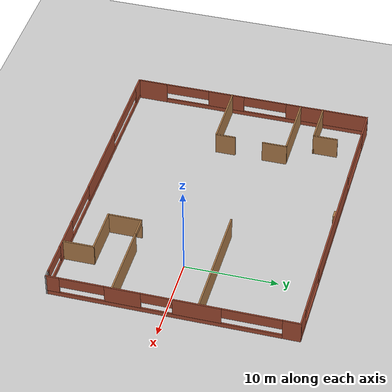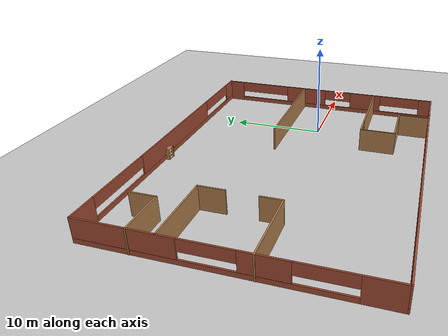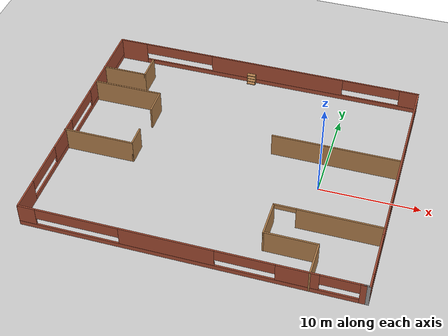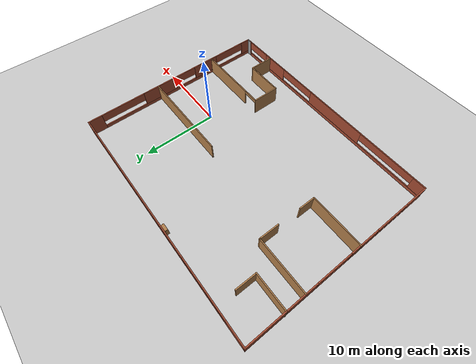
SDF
<sdf version="1.6">
 <world name="default">
  <model name="ground_plane">
   <static>1</static>
   <link name="link">
    <collision name="collision">
     <geometry><plane><normal>0 0 1</normal><size>100 100</size></plane></geometry>
     <surface><friction><ode><mu>100</mu><mu2>50</mu2></ode></friction></surface>
    </collision>
    <visual name="visual">
     <cast_shadows>0</cast_shadows>
     <geometry><plane><normal>0 0 1</normal><size>100 100</size></plane></geometry>
     <material>
      <script><uri>file://media/materials/scripts/gazebo.material</uri><name>Gazebo/Grey</name></script>
     </material>
    </visual>
   </link>
  </model>
  <model name="Building_1">
   <pose>-9.21158 0.7817 0 0 -0 0</pose>
   <link name="Wall_125">
    <pose>0.059584 13.1786 0 0 -0 0</pose>
    <visual name="Wall_125_Visual_0">
     <pose>-15.0244 0 1.25 0 -0 0</pose>
     <geometry><box><size>2.9511 0.15 2.5</size></box></geometry>
     <material>
      <script><uri>file://media/materials/scripts/gazebo.material</uri><name>Gazebo/Bricks</name></script>
      <ambient>1 1 1 1</ambient>
     </material>
     <meta><layer>0</layer></meta>
    </visual>
    <collision name="Wall_125_Collision_0">
     <geometry><box><size>2.9511 0.15 2.5</size></box></geometry>
     <pose>-15.0244 0 1.25 0 -0 0</pose>
    </collision>
    <visual name="Wall_125_Visual_1">
     <pose>1.47555 0 0.25 0 -0 0</pose>
     <geometry><box><size>30.0489 0.15 0.5</size></box></geometry>
     <material>
      <script><uri>file://media/materials/scripts/gazebo.material</uri><name>Gazebo/Bricks</name></script>
      <ambient>1 1 1 1</ambient>
     </material>
     <meta><layer>0</layer></meta>
    </visual>
    <collision name="Wall_125_Collision_1">
     <geometry><box><size>30.0489 0.15 0.5</size></box></geometry>
     <pose>1.47555 0 0.25 0 -0 0</pose>
    </collision>
    <visual name="Wall_125_Visual_2">
     <pose>1.21611 0 1.5 0 -0 0</pose>
     <geometry><box><size>14.4547 0.15 2</size></box></geometry>
     <material>
      <script><uri>file://media/materials/scripts/gazebo.material</uri><name>Gazebo/Bricks</name></script>
      <ambient>1 1 1 1</ambient>
     </material>
     <meta><layer>0</layer></meta>
    </visual>
    <collision name="Wall_125_Collision_2">
     <geometry><box><size>14.4547 0.15 2</size></box></geometry>
     <pose>1.21611 0 1.5 0 -0 0</pose>
    </collision>
    <visual name="Wall_125_Visual_3">
     <pose>15.494 0 1.5 0 -0 0</pose>
     <geometry><box><size>2.0121 0.15 2</size></box></geometry>
     <material>
      <script><uri>file://media/materials/scripts/gazebo.material</uri><name>Gazebo/Bricks</name></script>
      <ambient>1 1 1 1</ambient>
     </material>
     <meta><layer>0</layer></meta>
    </visual>
    <collision name="Wall_125_Collision_3">
     <geometry><box><size>2.0121 0.15 2</size></box></geometry>
     <pose>15.494 0 1.5 0 -0 0</pose>
    </collision>
    <visual name="Wall_125_Visual_4">
     <pose>-9.78007 0 1.9 0 -0 0</pose>
     <geometry><box><size>7.53766 0.15 1.2</size></box></geometry>
     <material>
      <script><uri>file://media/materials/scripts/gazebo.material</uri><name>Gazebo/Bricks</name></script>
      <ambient>1 1 1 1</ambient>
     </material>
     <meta><layer>0</layer></meta>
    </visual>
    <collision name="Wall_125_Collision_4">
     <geometry><box><size>7.53766 0.15 1.2</size></box></geometry>
     <pose>-9.78007 0 1.9 0 -0 0</pose>
    </collision>
    <visual name="Wall_125_Visual_5">
     <pose>11.4657 0 1.9 0 -0 0</pose>
     <geometry><box><size>6.04445 0.15 1.2</size></box></geometry>
     <material>
      <script><uri>file://media/materials/scripts/gazebo.material</uri><name>Gazebo/Bricks</name></script>
      <ambient>1 1 1 1</ambient>
     </material>
     <meta><layer>0</layer></meta>
    </visual>
    <collision name="Wall_125_Collision_5">
     <geometry><box><size>6.04445 0.15 1.2</size></box></geometry>
     <pose>11.4657 0 1.9 0 -0 0</pose>
    </collision>
   </link>
   <link name="Wall_127">
    <pose>-0.149643 -13.1714 0 0 -0 3.14159</pose>
    <visual name="Wall_127_Visual_0">
     <pose>-16.0964 0 1.25 0 -0 0</pose>
     <geometry><box><size>0.557218 0.15 2.5</size></box></geometry>
     <material>
      <script><uri>file://media/materials/scripts/gazebo.material</uri><name>Gazebo/Bricks</name></script>
      <ambient>1 1 1 1</ambient>
     </material>
     <meta><layer>0</layer></meta>
    </visual>
    <collision name="Wall_127_Collision_0">
     <geometry><box><size>0.557218 0.15 2.5</size></box></geometry>
     <pose>-16.0964 0 1.25 0 -0 0</pose>
    </collision>
    <visual name="Wall_127_Visual_1">
     <pose>0.278609 0 0.25 0 -0 0</pose>
     <geometry><box><size>32.1928 0.15 0.5</size></box></geometry>
     <material>
      <script><uri>file://media/materials/scripts/gazebo.material</uri><name>Gazebo/Bricks</name></script>
      <ambient>1 1 1 1</ambient>
     </material>
     <meta><layer>0</layer></meta>
    </visual>
    <collision name="Wall_127_Collision_1">
     <geometry><box><size>32.1928 0.15 0.5</size></box></geometry>
     <pose>0.278609 0 0.25 0 -0 0</pose>
    </collision>
    <visual name="Wall_127_Visual_2">
     <pose>-10.2298 0 1.5 0 -0 0</pose>
     <geometry><box><size>3.96485 0.15 2</size></box></geometry>
     <material>
      <script><uri>file://media/materials/scripts/gazebo.material</uri><name>Gazebo/Bricks</name></script>
      <ambient>1 1 1 1</ambient>
     </material>
     <meta><layer>0</layer></meta>
    </visual>
    <collision name="Wall_127_Collision_2">
     <geometry><box><size>3.96485 0.15 2</size></box></geometry>
     <pose>-10.2298 0 1.5 0 -0 0</pose>
    </collision>
    <visual name="Wall_127_Visual_3">
     <pose>1.8819 0 1.5 0 -0 0</pose>
     <geometry><box><size>9.09431 0.15 2</size></box></geometry>
     <material>
      <script><uri>file://media/materials/scripts/gazebo.material</uri><name>Gazebo/Bricks</name></script>
      <ambient>1 1 1 1</ambient>
     </material>
     <meta><layer>0</layer></meta>
    </visual>
    <collision name="Wall_127_Collision_3">
     <geometry><box><size>9.09431 0.15 2</size></box></geometry>
     <pose>1.8819 0 1.5 0 -0 0</pose>
    </collision>
    <visual name="Wall_127_Visual_4">
     <pose>15.4915 0 1.5 0 -0 0</pose>
     <geometry><box><size>1.76697 0.15 2</size></box></geometry>
     <material>
      <script><uri>file://media/materials/scripts/gazebo.material</uri><name>Gazebo/Bricks</name></script>
      <ambient>1 1 1 1</ambient>
     </material>
     <meta><layer>0</layer></meta>
    </visual>
    <collision name="Wall_127_Collision_4">
     <geometry><box><size>1.76697 0.15 2</size></box></geometry>
     <pose>15.4915 0 1.5 0 -0 0</pose>
    </collision>
    <visual name="Wall_127_Visual_5">
     <pose>-14.015 0 1.9 0 -0 0</pose>
     <geometry><box><size>3.6056 0.15 1.2</size></box></geometry>
     <material>
      <script><uri>file://media/materials/scripts/gazebo.material</uri><name>Gazebo/Bricks</name></script>
      <ambient>1 1 1 1</ambient>
     </material>
     <meta><layer>0</layer></meta>
    </visual>
    <collision name="Wall_127_Collision_5">
     <geometry><box><size>3.6056 0.15 1.2</size></box></geometry>
     <pose>-14.015 0 1.9 0 -0 0</pose>
    </collision>
    <visual name="Wall_127_Visual_6">
     <pose>-5.45629 0 1.9 0 -0 0</pose>
     <geometry><box><size>5.58208 0.15 1.2</size></box></geometry>
     <material>
      <script><uri>file://media/materials/scripts/gazebo.material</uri><name>Gazebo/Bricks</name></script>
      <ambient>1 1 1 1</ambient>
     </material>
     <meta><layer>0</layer></meta>
    </visual>
    <collision name="Wall_127_Collision_6">
     <geometry><box><size>5.58208 0.15 1.2</size></box></geometry>
     <pose>-5.45629 0 1.9 0 -0 0</pose>
    </collision>
    <visual name="Wall_127_Visual_7">
     <pose>10.5185 0 1.9 0 -0 0</pose>
     <geometry><box><size>8.17896 0.15 1.2</size></box></geometry>
     <material>
      <script><uri>file://media/materials/scripts/gazebo.material</uri><name>Gazebo/Bricks</name></script>
      <ambient>1 1 1 1</ambient>
     </material>
     <meta><layer>0</layer></meta>
    </visual>
    <collision name="Wall_127_Collision_7">
     <geometry><box><size>8.17896 0.15 1.2</size></box></geometry>
     <pose>10.5185 0 1.9 0 -0 0</pose>
    </collision>
   </link>
   <link name="Wall_128">
    <pose>-16.4496 0.003634 0 0 -0 1.5708</pose>
    <visual name="Wall_128_Visual_0">
     <pose>-11.5795 0 1.25 0 -0 0</pose>
     <geometry><box><size>3.34094 0.15 2.5</size></box></geometry>
     <material>
      <script><uri>file://media/materials/scripts/gazebo.material</uri><name>Gazebo/Bricks</name></script>
      <ambient>1 1 1 1</ambient>
     </material>
     <meta><layer>0</layer></meta>
    </visual>
    <collision name="Wall_128_Collision_0">
     <geometry><box><size>3.34094 0.15 2.5</size></box></geometry>
     <pose>-11.5795 0 1.25 0 -0 0</pose>
    </collision>
    <visual name="Wall_128_Visual_1">
     <pose>1.67047 0 0.25 0 -0 0</pose>
     <geometry><box><size>23.1591 0.15 0.5</size></box></geometry>
     <material>
      <script><uri>file://media/materials/scripts/gazebo.material</uri><name>Gazebo/Bricks</name></script>
      <ambient>1 1 1 1</ambient>
     </material>
     <meta><layer>0</layer></meta>
    </visual>
    <collision name="Wall_128_Collision_1">
     <geometry><box><size>23.1591 0.15 0.5</size></box></geometry>
     <pose>1.67047 0 0.25 0 -0 0</pose>
    </collision>
    <visual name="Wall_128_Visual_2">
     <pose>-2.96531 0 1.5 0 -0 0</pose>
     <geometry><box><size>4.12946 0.15 2</size></box></geometry>
     <material>
      <script><uri>file://media/materials/scripts/gazebo.material</uri><name>Gazebo/Bricks</name></script>
      <ambient>1 1 1 1</ambient>
     </material>
     <meta><layer>0</layer></meta>
    </visual>
    <collision name="Wall_128_Collision_2">
     <geometry><box><size>4.12946 0.15 2</size></box></geometry>
     <pose>-2.96531 0 1.5 0 -0 0</pose>
    </collision>
    <visual name="Wall_128_Visual_3">
     <pose>8.60155 0 1.5 0 -0 0</pose>
     <geometry><box><size>9.2969 0.15 2</size></box></geometry>
     <material>
      <script><uri>file://media/materials/scripts/gazebo.material</uri><name>Gazebo/Bricks</name></script>
      <ambient>1 1 1 1</ambient>
     </material>
     <meta><layer>0</layer></meta>
    </visual>
    <collision name="Wall_128_Collision_3">
     <geometry><box><size>9.2969 0.15 2</size></box></geometry>
     <pose>8.60155 0 1.5 0 -0 0</pose>
    </collision>
    <visual name="Wall_128_Visual_4">
     <pose>-7.46955 0 1.9 0 -0 0</pose>
     <geometry><box><size>4.87902 0.15 1.2</size></box></geometry>
     <material>
      <script><uri>file://media/materials/scripts/gazebo.material</uri><name>Gazebo/Bricks</name></script>
      <ambient>1 1 1 1</ambient>
     </material>
     <meta><layer>0</layer></meta>
    </visual>
    <collision name="Wall_128_Collision_4">
     <geometry><box><size>4.87902 0.15 1.2</size></box></geometry>
     <pose>-7.46955 0 1.9 0 -0 0</pose>
    </collision>
    <visual name="Wall_128_Visual_5">
     <pose>1.52626 0 1.9 0 -0 0</pose>
     <geometry><box><size>4.85368 0.15 1.2</size></box></geometry>
     <material>
      <script><uri>file://media/materials/scripts/gazebo.material</uri><name>Gazebo/Bricks</name></script>
      <ambient>1 1 1 1</ambient>
     </material>
     <meta><layer>0</layer></meta>
    </visual>
    <collision name="Wall_128_Collision_5">
     <geometry><box><size>4.85368 0.15 1.2</size></box></geometry>
     <pose>1.52626 0 1.9 0 -0 0</pose>
    </collision>
   </link>
   <link name="Wall_133">
    <pose>16.4846 0.003634 0 0 0 -1.5708</pose>
    <visual name="Wall_133_Visual_0">
     <pose>-12.2942 0 1.25 0 -0 0</pose>
     <geometry><box><size>1.91156 0.15 2.5</size></box></geometry>
     <material>
      <script><uri>file://media/materials/scripts/gazebo.material</uri><name>Gazebo/Bricks</name></script>
      <ambient>1 1 1 1</ambient>
     </material>
     <meta><layer>0</layer></meta>
    </visual>
    <collision name="Wall_133_Collision_0">
     <geometry><box><size>1.91156 0.15 2.5</size></box></geometry>
     <pose>-12.2942 0 1.25 0 -0 0</pose>
    </collision>
    <visual name="Wall_133_Visual_1">
     <pose>0.95578 0 0.25 0 -0 0</pose>
     <geometry><box><size>24.5884 0.15 0.5</size></box></geometry>
     <material>
      <script><uri>file://media/materials/scripts/gazebo.material</uri><name>Gazebo/Bricks</name></script>
      <ambient>1 1 1 1</ambient>
     </material>
     <meta><layer>0</layer></meta>
    </visual>
    <collision name="Wall_133_Collision_1">
     <geometry><box><size>24.5884 0.15 0.5</size></box></geometry>
     <pose>0.95578 0 0.25 0 -0 0</pose>
    </collision>
    <visual name="Wall_133_Visual_2">
     <pose>-2.57199 0 1.5 0 -0 0</pose>
     <geometry><box><size>5.04595 0.15 2</size></box></geometry>
     <material>
      <script><uri>file://media/materials/scripts/gazebo.material</uri><name>Gazebo/Bricks</name></script>
      <ambient>1 1 1 1</ambient>
     </material>
     <meta><layer>0</layer></meta>
    </visual>
    <collision name="Wall_133_Collision_2">
     <geometry><box><size>5.04595 0.15 2</size></box></geometry>
     <pose>-2.57199 0 1.5 0 -0 0</pose>
    </collision>
    <visual name="Wall_133_Visual_3">
     <pose>5.12612 0 1.5 0 -0 0</pose>
     <geometry><box><size>3.80624 0.15 2</size></box></geometry>
     <material>
      <script><uri>file://media/materials/scripts/gazebo.material</uri><name>Gazebo/Bricks</name></script>
      <ambient>1 1 1 1</ambient>
     </material>
     <meta><layer>0</layer></meta>
    </visual>
    <collision name="Wall_133_Collision_3">
     <geometry><box><size>3.80624 0.15 2</size></box></geometry>
     <pose>5.12612 0 1.5 0 -0 0</pose>
    </collision>
    <visual name="Wall_133_Visual_4">
     <pose>12.5066 0 1.5 0 -0 0</pose>
     <geometry><box><size>1.48671 0.15 2</size></box></geometry>
     <material>
      <script><uri>file://media/materials/scripts/gazebo.material</uri><name>Gazebo/Bricks</name></script>
      <ambient>1 1 1 1</ambient>
     </material>
     <meta><layer>0</layer></meta>
    </visual>
    <collision name="Wall_133_Collision_4">
     <geometry><box><size>1.48671 0.15 2</size></box></geometry>
     <pose>12.5066 0 1.5 0 -0 0</pose>
    </collision>
    <visual name="Wall_133_Visual_5">
     <pose>-8.2167 0 1.9 0 -0 0</pose>
     <geometry><box><size>6.24348 0.15 1.2</size></box></geometry>
     <material>
      <script><uri>file://media/materials/scripts/gazebo.material</uri><name>Gazebo/Bricks</name></script>
      <ambient>1 1 1 1</ambient>
     </material>
     <meta><layer>0</layer></meta>
    </visual>
    <collision name="Wall_133_Collision_5">
     <geometry><box><size>6.24348 0.15 1.2</size></box></geometry>
     <pose>-8.2167 0 1.9 0 -0 0</pose>
    </collision>
    <visual name="Wall_133_Visual_6">
     <pose>1.58699 0 1.9 0 -0 0</pose>
     <geometry><box><size>3.27201 0.15 1.2</size></box></geometry>
     <material>
      <script><uri>file://media/materials/scripts/gazebo.material</uri><name>Gazebo/Bricks</name></script>
      <ambient>1 1 1 1</ambient>
     </material>
     <meta><layer>0</layer></meta>
    </visual>
    <collision name="Wall_133_Collision_6">
     <geometry><box><size>3.27201 0.15 1.2</size></box></geometry>
     <pose>1.58699 0 1.9 0 -0 0</pose>
    </collision>
    <visual name="Wall_133_Visual_7">
     <pose>9.39627 0 1.9 0 -0 0</pose>
     <geometry><box><size>4.73405 0.15 1.2</size></box></geometry>
     <material>
      <script><uri>file://media/materials/scripts/gazebo.material</uri><name>Gazebo/Bricks</name></script>
      <ambient>1 1 1 1</ambient>
     </material>
     <meta><layer>0</layer></meta>
    </visual>
    <collision name="Wall_133_Collision_7">
     <geometry><box><size>4.73405 0.15 1.2</size></box></geometry>
     <pose>9.39627 0 1.9 0 -0 0</pose>
    </collision>
   </link>
   <link name="Wall_134">
    <collision name="Wall_134_Collision">
     <geometry><box><size>0.75 0.15 2.5</size></box></geometry>
     <pose>0 0 1.25 0 -0 0</pose>
    </collision>
    <visual name="Wall_134_Visual">
     <pose>0 0 1.25 0 -0 0</pose>
     <geometry><box><size>0.75 0.15 2.5</size></box></geometry>
     <material>
      <script><uri>file://media/materials/scripts/gazebo.material</uri><name>Gazebo/Grey</name></script>
      <ambient>1 1 1 1</ambient>
     </material>
     <meta><layer>0</layer></meta>
    </visual>
    <pose>16.1846 -13.1714 0 0 -0 3.14159</pose>
   </link>
   <link name="Wall_143">
    <collision name="Wall_143_Collision">
     <geometry><box><size>4.75 0.15 2.5</size></box></geometry>
     <pose>0 0 1.25 0 -0 0</pose>
    </collision>
    <visual name="Wall_143_Visual">
     <pose>0 0 1.25 0 -0 0</pose>
     <geometry><box><size>4.75 0.15 2.5</size></box></geometry>
     <material>
      <script><uri>file://media/materials/scripts/gazebo.material</uri><name>Gazebo/Wood</name></script>
      <ambient>1 1 1 1</ambient>
     </material>
     <meta><layer>0</layer></meta>
    </visual>
    <pose>-14.1846 8.14698 0 0 -0 0</pose>
   </link>
   <link name="Wall_144">
    <collision name="Wall_144_Collision">
     <geometry><box><size>2.75 0.15 2.5</size></box></geometry>
     <pose>0 0 1.25 0 -0 0</pose>
    </collision>
    <visual name="Wall_144_Visual">
     <pose>0 0 1.25 0 -0 0</pose>
     <geometry><box><size>2.75 0.15 2.5</size></box></geometry>
     <material>
      <script><uri>file://media/materials/scripts/gazebo.material</uri><name>Gazebo/Wood</name></script>
      <ambient>1 1 1 1</ambient>
     </material>
     <meta><layer>0</layer></meta>
    </visual>
    <pose>-11.8846 9.44698 0 0 -0 1.5708</pose>
   </link>
   <link name="Wall_146">
    <collision name="Wall_146_Collision">
     <geometry><box><size>7.25 0.15 2.5</size></box></geometry>
     <pose>0 0 1.25 0 -0 0</pose>
    </collision>
    <visual name="Wall_146_Visual">
     <pose>0 0 1.25 0 -0 0</pose>
     <geometry><box><size>7.25 0.15 2.5</size></box></geometry>
     <material>
      <script><uri>file://media/materials/scripts/gazebo.material</uri><name>Gazebo/Wood</name></script>
      <ambient>1 1 1 1</ambient>
     </material>
     <meta><layer>0</layer></meta>
    </visual>
    <pose>-12.9346 -2.2626 0 0 -0 0</pose>
   </link>
   <link name="Wall_147">
    <collision name="Wall_147_Collision">
     <geometry><box><size>2.25 0.15 2.5</size></box></geometry>
     <pose>0 0 1.25 0 -0 0</pose>
    </collision>
    <visual name="Wall_147_Visual">
     <pose>0 0 1.25 0 -0 0</pose>
     <geometry><box><size>2.25 0.15 2.5</size></box></geometry>
     <material>
      <script><uri>file://media/materials/scripts/gazebo.material</uri><name>Gazebo/Wood</name></script>
      <ambient>1 1 1 1</ambient>
     </material>
     <meta><layer>0</layer></meta>
    </visual>
    <pose>-9.38458 -1.2126 0 0 -0 1.5708</pose>
   </link>
   <link name="Wall_149">
    <collision name="Wall_149_Collision">
     <geometry><box><size>2.75 0.15 2.5</size></box></geometry>
     <pose>0 0 1.25 0 -0 0</pose>
    </collision>
    <visual name="Wall_149_Visual">
     <pose>0 0 1.25 0 -0 0</pose>
     <geometry><box><size>2.75 0.15 2.5</size></box></geometry>
     <material>
      <script><uri>file://media/materials/scripts/gazebo.material</uri><name>Gazebo/Wood</name></script>
      <ambient>1 1 1 1</ambient>
     </material>
     <meta><layer>0</layer></meta>
    </visual>
    <pose>-9.32455 4.3248 0 0 -0 1.5708</pose>
   </link>
   <link name="Wall_153">
    <collision name="Wall_153_Collision">
     <geometry><box><size>7.25 0.15 2.5</size></box></geometry>
     <pose>0 0 1.25 0 -0 0</pose>
    </collision>
    <visual name="Wall_153_Visual">
     <pose>0 0 1.25 0 -0 0</pose>
     <geometry><box><size>7.25 0.15 2.5</size></box></geometry>
     <material>
      <script><uri>file://media/materials/scripts/gazebo.material</uri><name>Gazebo/Wood</name></script>
      <ambient>1 1 1 1</ambient>
     </material>
     <meta><layer>0</layer></meta>
    </visual>
    <pose>-12.8746 5.6248 0 0 -0 3.14159</pose>
   </link>
   <link name="Wall_155">
    <pose>11.2766 -6.22864 0 0 -0 3.14159</pose>
    <visual name="Wall_155_Visual_0">
     <pose>-1.11545 0 1.25 0 -0 0</pose>
     <geometry><box><size>8.2691 0.15 2.5</size></box></geometry>
     <material>
      <script><uri>file://media/materials/scripts/gazebo.material</uri><name>Gazebo/Wood</name></script>
      <ambient>1 1 1 1</ambient>
     </material>
     <meta><layer>0</layer></meta>
    </visual>
    <collision name="Wall_155_Collision_0">
     <geometry><box><size>8.2691 0.15 2.5</size></box></geometry>
     <pose>-1.11545 0 1.25 0 -0 0</pose>
    </collision>
    <visual name="Wall_155_Visual_1">
     <pose>5.23824 0 1.25 0 -0 0</pose>
     <geometry><box><size>0.023525 0.15 2.5</size></box></geometry>
     <material>
      <script><uri>file://media/materials/scripts/gazebo.material</uri><name>Gazebo/Wood</name></script>
      <ambient>1 1 1 1</ambient>
     </material>
     <meta><layer>0</layer></meta>
    </visual>
    <collision name="Wall_155_Collision_1">
     <geometry><box><size>0.023525 0.15 2.5</size></box></geometry>
     <pose>5.23824 0 1.25 0 -0 0</pose>
    </collision>
    <visual name="Wall_155_Visual_2">
     <pose>4.12279 0 2.25 0 -0 0</pose>
     <geometry><box><size>2.20738 0.15 0.5</size></box></geometry>
     <material>
      <script><uri>file://media/materials/scripts/gazebo.material</uri><name>Gazebo/Wood</name></script>
      <ambient>1 1 1 1</ambient>
     </material>
     <meta><layer>0</layer></meta>
    </visual>
    <collision name="Wall_155_Collision_2">
     <geometry><box><size>2.20738 0.15 0.5</size></box></geometry>
     <pose>4.12279 0 2.25 0 -0 0</pose>
    </collision>
   </link>
   <link name="Wall_156">
    <collision name="Wall_156_Collision">
     <geometry><box><size>3.75 0.15 2.5</size></box></geometry>
     <pose>0 0 1.25 0 -0 0</pose>
    </collision>
    <visual name="Wall_156_Visual">
     <pose>0 0 1.25 0 -0 0</pose>
     <geometry><box><size>3.75 0.15 2.5</size></box></geometry>
     <material>
      <script><uri>file://media/materials/scripts/gazebo.material</uri><name>Gazebo/Wood</name></script>
      <ambient>1 1 1 1</ambient>
     </material>
     <meta><layer>0</layer></meta>
    </visual>
    <pose>6.10157 -8.02864 0 0 0 -1.5708</pose>
   </link>
   <link name="Wall_157">
    <collision name="Wall_157_Collision">
     <geometry><box><size>5.25 0.15 2.5</size></box></geometry>
     <pose>0 0 1.25 0 -0 0</pose>
    </collision>
    <visual name="Wall_157_Visual">
     <pose>0 0 1.25 0 -0 0</pose>
     <geometry><box><size>5.25 0.15 2.5</size></box></geometry>
     <material>
      <script><uri>file://media/materials/scripts/gazebo.material</uri><name>Gazebo/Wood</name></script>
      <ambient>1 1 1 1</ambient>
     </material>
     <meta><layer>0</layer></meta>
    </visual>
    <pose>8.65157 -9.82864 0 0 -0 0</pose>
   </link>
   <link name="Wall_158">
    <collision name="Wall_158_Collision">
     <geometry><box><size>3.5 0.15 2.5</size></box></geometry>
     <pose>0 0 1.25 0 -0 0</pose>
    </collision>
    <visual name="Wall_158_Visual">
     <pose>0 0 1.25 0 -0 0</pose>
     <geometry><box><size>3.5 0.15 2.5</size></box></geometry>
     <material>
      <script><uri>file://media/materials/scripts/gazebo.material</uri><name>Gazebo/Wood</name></script>
      <ambient>1 1 1 1</ambient>
     </material>
     <meta><layer>0</layer></meta>
    </visual>
    <pose>11.2016 -11.5036 0 0 0 -1.5708</pose>
   </link>
   <link name="Wall_160">
    <collision name="Wall_160_Collision">
     <geometry><box><size>13 0.15 2.5</size></box></geometry>
     <pose>0 0 1.25 0 -0 0</pose>
    </collision>
    <visual name="Wall_160_Visual">
     <pose>0 0 1.25 0 -0 0</pose>
     <geometry><box><size>13 0.15 2.5</size></box></geometry>
     <material>
      <script><uri>file://media/materials/scripts/gazebo.material</uri><name>Gazebo/Wood</name></script>
      <ambient>0.921569 0.807843 0.615686 1</ambient>
     </material>
     <meta><layer>0</layer></meta>
    </visual>
    <pose>10.0287 2.78111 0 0 -0 3.14159</pose>
   </link>
   <static>1</static>
  </model>
  <model name="bookshelf">
   <static>1</static>
   <link name="link">
    <inertial><mass>1</mass></inertial>
    <collision name="back">
     <pose>0 0.005 0.6 0 -0 0</pose>
     <geometry><box><size>0.9 0.01 1.2</size></box></geometry>
    </collision>
    <visual name="visual1">
     <pose>0 0.005 0.6 0 -0 0</pose>
     <geometry><box><size>0.9 0.01 1.2</size></box></geometry>
     <material>
      <script><uri>file://media/materials/scripts/gazebo.material</uri><name>Gazebo/Wood</name></script>
     </material>
    </visual>
    <collision name="left_side">
     <pose>0.45 -0.195 0.6 0 -0 0</pose>
     <geometry><box><size>0.02 0.4 1.2</size></box></geometry>
    </collision>
    <visual name="visual2">
     <pose>0.45 -0.195 0.6 0 -0 0</pose>
     <geometry><box><size>0.02 0.4 1.2</size></box></geometry>
     <material>
      <script><uri>file://media/materials/scripts/gazebo.material</uri><name>Gazebo/Wood</name></script>
     </material>
    </visual>
    <collision name="right_side">
     <pose>-0.45 -0.195 0.6 0 -0 0</pose>
     <geometry><box><size>0.02 0.4 1.2</size></box></geometry>
    </collision>
    <visual name="visual3">
     <pose>-0.45 -0.195 0.6 0 -0 0</pose>
     <geometry><box><size>0.02 0.4 1.2</size></box></geometry>
     <material>
      <script><uri>file://media/materials/scripts/gazebo.material</uri><name>Gazebo/Wood</name></script>
     </material>
    </visual>
    <collision name="bottom">
     <pose>0 -0.195 0.03 0 -0 0</pose>
     <geometry><box><size>0.88 0.4 0.06</size></box></geometry>
    </collision>
    <visual name="visual4">
     <pose>0 -0.195 0.03 0 -0 0</pose>
     <geometry><box><size>0.88 0.4 0.06</size></box></geometry>
     <material>
      <script><uri>file://media/materials/scripts/gazebo.material</uri><name>Gazebo/Wood</name></script>
     </material>
    </visual>
    <collision name="top">
     <pose>0 -0.195 1.19 0 -0 0</pose>
     <geometry><box><size>0.88 0.4 0.02</size></box></geometry>
    </collision>
    <visual name="visual5">
     <pose>0 -0.195 1.19 0 -0 0</pose>
     <geometry><box><size>0.88 0.4 0.02</size></box></geometry>
     <material>
      <script><uri>file://media/materials/scripts/gazebo.material</uri><name>Gazebo/Wood</name></script>
     </material>
    </visual>
    <collision name="low_shelf">
     <pose>0 -0.195 0.43 0 -0 0</pose>
     <geometry><box><size>0.88 0.4 0.02</size></box></geometry>
    </collision>
    <visual name="visual6">
     <pose>0 -0.195 0.43 0 -0 0</pose>
     <geometry><box><size>0.88 0.4 0.02</size></box></geometry>
     <material>
      <script><uri>file://media/materials/scripts/gazebo.material</uri><name>Gazebo/Wood</name></script>
     </material>
    </visual>
    <collision name="high_shelf">
     <pose>0 -0.195 0.8 0 -0 0</pose>
     <geometry><box><size>0.88 0.4 0.02</size></box></geometry>
    </collision>
    <visual name="visual7">
     <pose>0 -0.195 0.8 0 -0 0</pose>
     <geometry><box><size>0.88 0.4 0.02</size></box></geometry>
     <material>
      <script><uri>file://media/materials/scripts/gazebo.material</uri><name>Gazebo/Wood</name></script>
     </material>
    </visual>
   </link>
   <pose>-10.621 13.8285 0 0 -0 0</pose>
  </model>
 </world>
</sdf>
